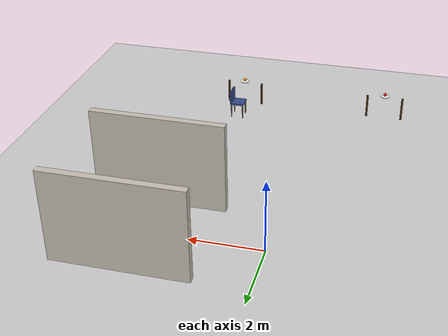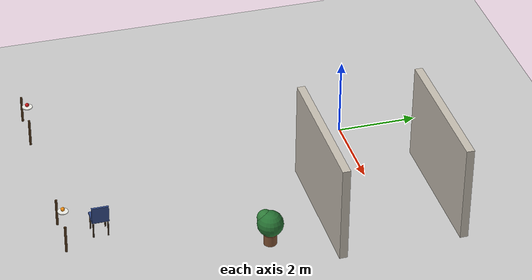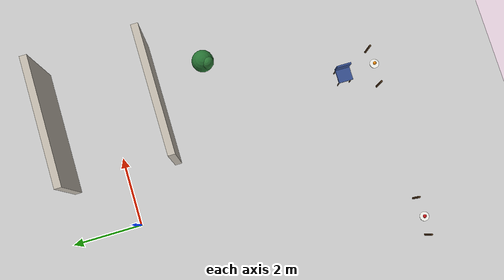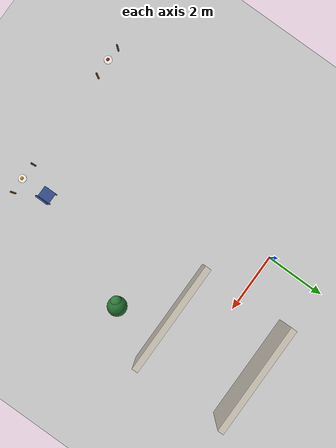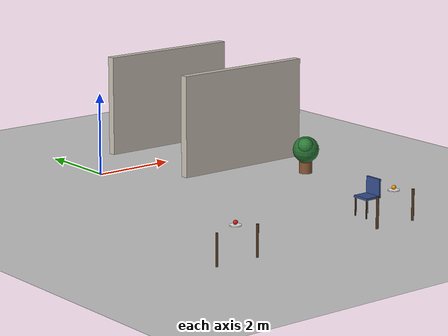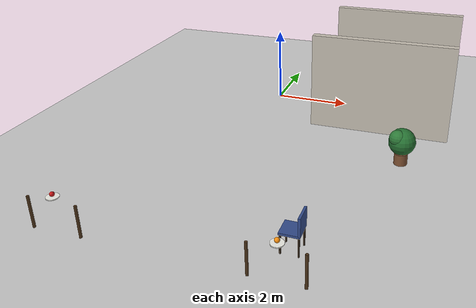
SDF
<sdf version="1.6">
 <world name="office_world">
  <include><uri>model://sun</uri></include>
  <include><uri>model://ground_plane</uri></include>
  <model name="wall_h_top_0_right">
   <static>true</static>
   <pose>3.2 1.5 1.25 0 0 0.0</pose>
   <link name="link">
    <collision name="collision"><geometry><box><size>3.6 0.2 2.5</size></box></geometry></collision>
    <visual name="visual">
     <geometry><box><size>3.6 0.2 2.5</size></box></geometry>
     <material><ambient>0.78 0.75 0.7 1</ambient><diffuse>0.78 0.75 0.7 1</diffuse></material>
    </visual>
   </link>
  </model>
  <model name="wall_h_bottom_0_right">
   <static>true</static>
   <pose>3.2 -1.5 1.25 0 0 0.0</pose>
   <link name="link">
    <collision name="collision"><geometry><box><size>3.6 0.2 2.5</size></box></geometry></collision>
    <visual name="visual">
     <geometry><box><size>3.6 0.2 2.5</size></box></geometry>
     <material><ambient>0.78 0.75 0.7 1</ambient><diffuse>0.78 0.75 0.7 1</diffuse></material>
    </visual>
   </link>
  </model>
  <model name="table_5_leg_-1_1">
   <static>true</static>
   <pose>-2.54 -7.71 0.3625 0 0 0</pose>
   <link name="link">
    <collision name="collision">
     <geometry><cylinder><radius>0.03</radius><length>0.725</length></cylinder></geometry>
    </collision>
    <visual name="visual">
     <geometry><cylinder><radius>0.03</radius><length>0.725</length></cylinder></geometry>
     <material><ambient>0.3 0.2 0.1 1</ambient><diffuse>0.3 0.2 0.1 1</diffuse></material>
    </visual>
   </link>
  </model>
  <model name="table_5_leg_1_1">
   <static>true</static>
   <pose>-1.46 -7.71 0.3625 0 0 0</pose>
   <link name="link">
    <collision name="collision">
     <geometry><cylinder><radius>0.03</radius><length>0.725</length></cylinder></geometry>
    </collision>
    <visual name="visual">
     <geometry><cylinder><radius>0.03</radius><length>0.725</length></cylinder></geometry>
     <material><ambient>0.3 0.2 0.1 1</ambient><diffuse>0.3 0.2 0.1 1</diffuse></material>
    </visual>
   </link>
  </model>
  <model name="table_6_leg_-1_1">
   <static>true</static>
   <pose>1.96 -7.71 0.3625 0 0 0</pose>
   <link name="link">
    <collision name="collision">
     <geometry><cylinder><radius>0.03</radius><length>0.725</length></cylinder></geometry>
    </collision>
    <visual name="visual">
     <geometry><cylinder><radius>0.03</radius><length>0.725</length></cylinder></geometry>
     <material><ambient>0.3 0.2 0.1 1</ambient><diffuse>0.3 0.2 0.1 1</diffuse></material>
    </visual>
   </link>
  </model>
  <model name="table_6_leg_1_1">
   <static>true</static>
   <pose>3.04 -7.71 0.3625 0 0 0</pose>
   <link name="link">
    <collision name="collision">
     <geometry><cylinder><radius>0.03</radius><length>0.725</length></cylinder></geometry>
    </collision>
    <visual name="visual">
     <geometry><cylinder><radius>0.03</radius><length>0.725</length></cylinder></geometry>
     <material><ambient>0.3 0.2 0.1 1</ambient><diffuse>0.3 0.2 0.1 1</diffuse></material>
    </visual>
   </link>
  </model>
  <model name="chair_10_seat">
   <static>true</static>
   <pose>2.5 -6.8 0.45 0 0 3.14159</pose>
   <link name="link">
    <collision name="collision"><geometry><box><size>0.42 0.42 0.05</size></box></geometry></collision>
    <visual name="visual">
     <geometry><box><size>0.42 0.42 0.05</size></box></geometry>
     <material><ambient>0.2 0.3 0.55 1</ambient><diffuse>0.2 0.3 0.55 1</diffuse></material>
    </visual>
   </link>
  </model>
  <model name="chair_10_back">
   <static>true</static>
   <pose>2.689999999999331 -6.80000050418206 0.65 0 0 3.14159</pose>
   <link name="link">
    <collision name="collision"><geometry><box><size>0.05 0.42 0.42</size></box></geometry></collision>
    <visual name="visual">
     <geometry><box><size>0.05 0.42 0.42</size></box></geometry>
     <material><ambient>0.2 0.3 0.55 1</ambient><diffuse>0.2 0.3 0.55 1</diffuse></material>
    </visual>
   </link>
  </model>
  <model name="chair_10_leg_-1_-1">
   <static>true</static>
   <pose>2.680000477645529 -6.620000477646796 0.225 0 0 0</pose>
   <link name="link">
    <collision name="collision">
     <geometry><cylinder><radius>0.02</radius><length>0.45</length></cylinder></geometry>
    </collision>
    <visual name="visual">
     <geometry><cylinder><radius>0.02</radius><length>0.45</length></cylinder></geometry>
     <material><ambient>0.15 0.1 0.05 1</ambient><diffuse>0.15 0.1 0.05 1</diffuse></material>
    </visual>
   </link>
  </model>
  <model name="chair_10_leg_-1_1">
   <static>true</static>
   <pose>2.679999522353204 -6.980000477645529 0.225 0 0 0</pose>
   <link name="link">
    <collision name="collision">
     <geometry><cylinder><radius>0.02</radius><length>0.45</length></cylinder></geometry>
    </collision>
    <visual name="visual">
     <geometry><cylinder><radius>0.02</radius><length>0.45</length></cylinder></geometry>
     <material><ambient>0.15 0.1 0.05 1</ambient><diffuse>0.15 0.1 0.05 1</diffuse></material>
    </visual>
   </link>
  </model>
  <model name="chair_10_leg_1_-1">
   <static>true</static>
   <pose>2.320000477646796 -6.619999522354471 0.225 0 0 0</pose>
   <link name="link">
    <collision name="collision">
     <geometry><cylinder><radius>0.02</radius><length>0.45</length></cylinder></geometry>
    </collision>
    <visual name="visual">
     <geometry><cylinder><radius>0.02</radius><length>0.45</length></cylinder></geometry>
     <material><ambient>0.15 0.1 0.05 1</ambient><diffuse>0.15 0.1 0.05 1</diffuse></material>
    </visual>
   </link>
  </model>
  <model name="chair_10_leg_1_1">
   <static>true</static>
   <pose>2.319999522354471 -6.979999522353204 0.225 0 0 0</pose>
   <link name="link">
    <collision name="collision">
     <geometry><cylinder><radius>0.02</radius><length>0.45</length></cylinder></geometry>
    </collision>
    <visual name="visual">
     <geometry><cylinder><radius>0.02</radius><length>0.45</length></cylinder></geometry>
     <material><ambient>0.15 0.1 0.05 1</ambient><diffuse>0.15 0.1 0.05 1</diffuse></material>
    </visual>
   </link>
  </model>
  <model name="plant_5_pot">
   <static>true</static>
   <pose>4 -3 0.14 0 0 0</pose>
   <link name="link">
    <collision name="collision">
     <geometry><cylinder><radius>0.16</radius><length>0.28</length></cylinder></geometry>
    </collision>
    <visual name="visual">
     <geometry><cylinder><radius>0.16</radius><length>0.28</length></cylinder></geometry>
     <material><ambient>0.5 0.32 0.2 1</ambient><diffuse>0.5 0.32 0.2 1</diffuse></material>
    </visual>
   </link>
  </model>
  <model name="plant_5_foliage_1">
   <static>true</static>
   <pose>4 -3 0.5800000000000001 0 0 0</pose>
   <link name="link">
    <collision name="collision"><geometry><sphere><radius>0.32</radius></sphere></geometry></collision>
    <visual name="visual">
     <geometry><sphere><radius>0.32</radius></sphere></geometry>
     <material><ambient>0.15 0.45 0.2 1</ambient><diffuse>0.15 0.45 0.2 1</diffuse></material>
    </visual>
   </link>
  </model>
  <model name="plant_5_foliage_3">
   <static>true</static>
   <pose>3.9 -3.1 0.7 0 0 0</pose>
   <link name="link">
    <collision name="collision"><geometry><sphere><radius>0.2</radius></sphere></geometry></collision>
    <visual name="visual">
     <geometry><sphere><radius>0.2</radius></sphere></geometry>
     <material><ambient>0.18 0.48 0.22 1</ambient><diffuse>0.18 0.48 0.22 1</diffuse></material>
    </visual>
   </link>
  </model>
  <model name="food_7_plate">
   <static>true</static>
   <pose>-2 -7.65 0.78 0 0 0</pose>
   <link name="link">
    <visual name="visual">
     <geometry><cylinder><radius>0.13</radius><length>0.02</length></cylinder></geometry>
     <material><ambient>0.95 0.95 0.92 1</ambient><diffuse>0.95 0.95 0.92 1</diffuse></material>
    </visual>
   </link>
  </model>
  <model name="food_7_item">
   <static>true</static>
   <pose>-2 -7.65 0.8400000000000001 0 0 0</pose>
   <link name="link">
    <collision name="collision"><geometry><sphere><radius>0.05</radius></sphere></geometry></collision>
    <visual name="visual">
     <geometry><sphere><radius>0.05</radius></sphere></geometry>
     <material><ambient>0.8 0.1 0.1 1</ambient><diffuse>0.8 0.1 0.1 1</diffuse></material>
    </visual>
   </link>
  </model>
  <model name="food_8_plate">
   <static>true</static>
   <pose>2.5 -7.65 0.78 0 0 0</pose>
   <link name="link">
    <visual name="visual">
     <geometry><cylinder><radius>0.13</radius><length>0.02</length></cylinder></geometry>
     <material><ambient>0.95 0.95 0.92 1</ambient><diffuse>0.95 0.95 0.92 1</diffuse></material>
    </visual>
   </link>
  </model>
  <model name="food_8_item">
   <static>true</static>
   <pose>2.5 -7.65 0.8400000000000001 0 0 0</pose>
   <link name="link">
    <collision name="collision"><geometry><sphere><radius>0.05</radius></sphere></geometry></collision>
    <visual name="visual">
     <geometry><sphere><radius>0.05</radius></sphere></geometry>
     <material><ambient>0.95 0.55 0.05 1</ambient><diffuse>0.95 0.55 0.05 1</diffuse></material>
    </visual>
   </link>
  </model>
 </world>
</sdf>
